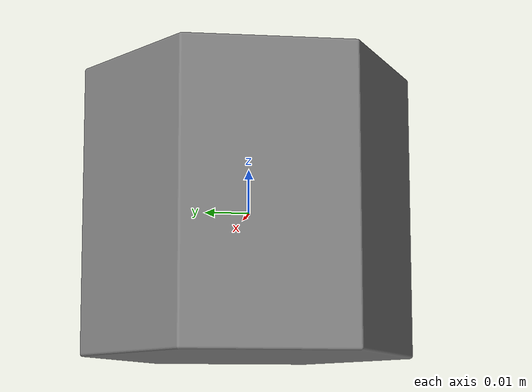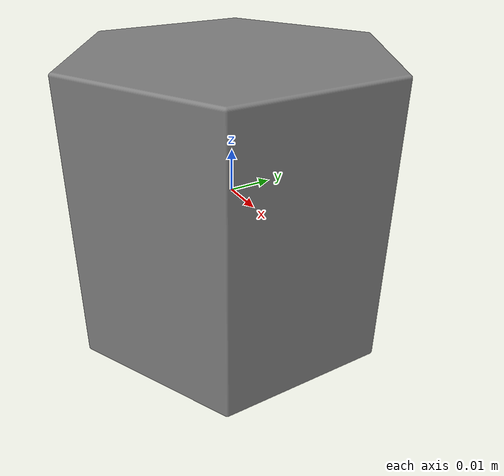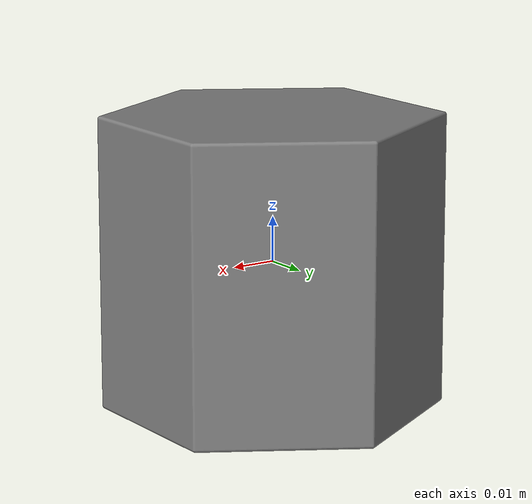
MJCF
<mujoco model="hex_prism">
    <compiler angle="radian"/>
    <default>
        <geom type="mesh" condim="3" margin="0.005" contype="1" conaffinity="1"/>
    </default>
    <asset>
        <mesh name="prism" file="hex_prism.stl" scale="0.0013 0.0013 0.0013"/>
    </asset>
    <worldbody>
        <body name="prism">
            <geom mesh="prism" density="400"/>
        </body>
    </worldbody>
</mujoco>
